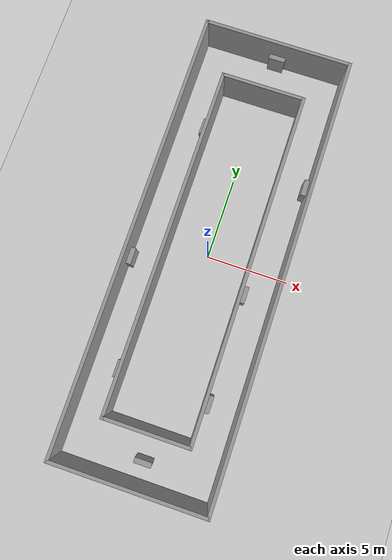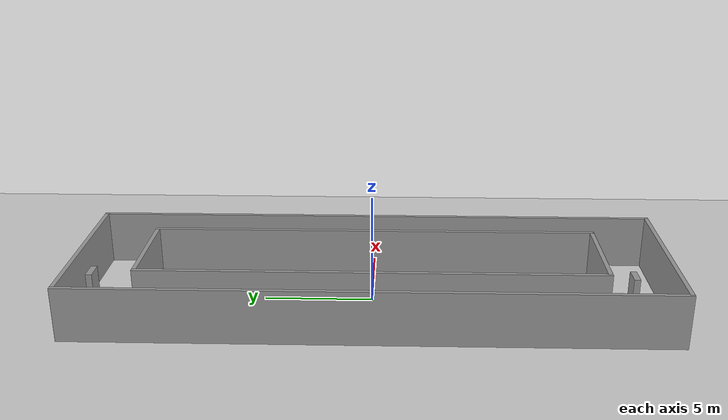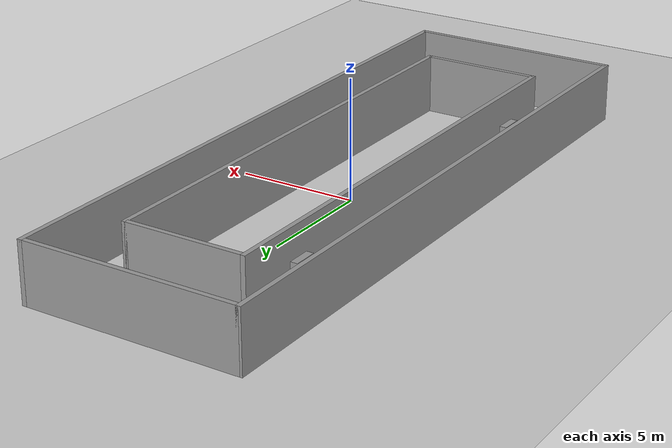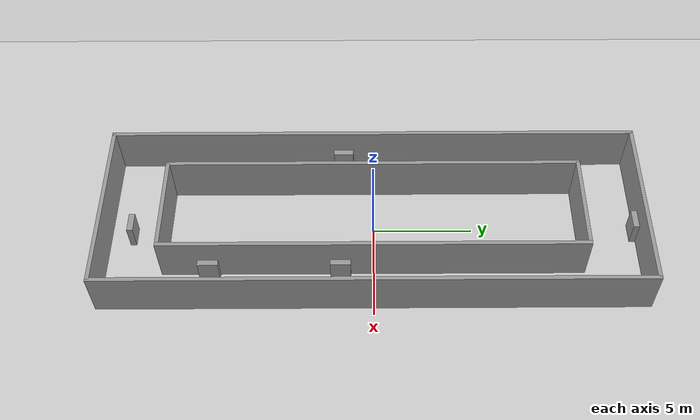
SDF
<?xml version="1.4"?>
<sdf version="1.4">
  <world name="default">
    <include>
      <uri>model://sun</uri>
    </include>
    <include>
      <uri>model://ground_plane</uri>
    </include>
    <gui>
      <camera name="gzclient_camera">
        <pose>0 0 35 0 1.57 3.14</pose>
      </camera>
    </gui>

<!--map-->
    <model name='Track'>
      <static>true</static>
      <link name='Wall_1'>
        <collision name='Wall_1_Collision'>
          <geometry>
            <box>
              <size>27.0 0.2 2.5</size>
            </box>
          </geometry>
          <pose>0 0 1.25 0 -0 0</pose>
        </collision>
        <visual name='Wall_1_Visual'>
          <pose>0 0 1.25 0 -0 0</pose>
          <geometry>
            <box>
              <size>27 0.2 2.5</size>
            </box>
          </geometry>
          <material>
            <script>
              <uri>file://media/materials/scripts/gazebo.material</uri>
              <name>Gazebo/Grey</name>
            </script>
          </material>
        </visual>
        <velocity_decay>
          <linear>0</linear>
          <angular>0</angular>
        </velocity_decay>
        <pose>4.5 0 0 0 0 -1.5708</pose>
      </link>
      <link name='Wall_2'>
        <collision name='Wall_2_Collision'>
          <geometry>
            <box>
              <size>9.0 0.2 2.5</size>
            </box>
          </geometry>
          <pose>0 0 1.25 0 -0 0</pose>
        </collision>
        <visual name='Wall_3_Visual'>
          <pose>0 0 1.25 0 -0 0</pose>
          <geometry>
            <box>
              <size>9.0 0.2 2.5</size>
            </box>
          </geometry>
          <material>
            <script>
              <uri>file://media/materials/scripts/gazebo.material</uri>
              <name>Gazebo/Grey</name>
            </script>
          </material>
        </visual>
        <velocity_decay>
          <linear>0</linear>
          <angular>0</angular>
        </velocity_decay>
        <pose>0.0 -13.4 0 0 -0 0</pose>
      </link>
      <link name='Wall_3'>
        <collision name='Wall_3_Collision'>
          <geometry>
            <box>
              <size>27.0 0.2 2.5</size>
            </box>
          </geometry>
          <pose>0 0 1.25 0 -0 0</pose>
        </collision>
        <visual name='Wall_3_Visual'>
          <pose>0 0 1.25 0 -0 0</pose>
          <geometry>
            <box>
              <size>27.0 0.2 2.5</size>
            </box>
          </geometry>
          <material>
            <script>
              <uri>file://media/materials/scripts/gazebo.material</uri>
              <name>Gazebo/Grey</name>
            </script>
          </material>
        </visual>
        <velocity_decay>
          <linear>0</linear>
          <angular>0</angular>
        </velocity_decay>
        <pose>-4.5 0 0 0 -0 1.5708</pose>
      </link>
      <link name='Wall_4'>
        <collision name='Wall_4_Collision'>
          <geometry>
            <box>
              <size>9.0 0.2 2.5</size>
            </box>
          </geometry>
          <pose>0 0 1.25 0 -0 0</pose>
        </collision>
        <visual name='Wall_4_Visual'>
          <pose>0 0 1.25 0 -0 0</pose>
          <geometry>
            <box>
              <size>9.0 0.2 2.5</size>
            </box>
          </geometry>
          <material>
            <script>
              <uri>file://media/materials/scripts/gazebo.material</uri>
              <name>Gazebo/Grey</name>
            </script>
          </material>
        </visual>
        <velocity_decay>
          <linear>0</linear>
          <angular>0</angular>
        </velocity_decay>
        <pose>0.0 13.4 0 0 -0 0.0</pose>
      </link>
      <link name='Wall_5'>
        <collision name='Wall_5_Collision'>
          <geometry>
            <box>
              <size>21.0 0.2 2.5</size>
            </box>
          </geometry>
          <pose>0 0 1.25 0 -0 0</pose>
        </collision>
        <visual name='Wall_5_Visual'>
          <pose>0 0 1.25 0 -0 0</pose>
          <geometry>
            <box>
              <size>21.0 0.2 2.5</size>
            </box>
          </geometry>
          <material>
            <script>
              <uri>file://media/materials/scripts/gazebo.material</uri>
              <name>Gazebo/Grey</name>
            </script>
          </material>
        </visual>
        <velocity_decay>
          <linear>0</linear>
          <angular>0</angular>
        </velocity_decay>
        <pose>-2.5 0 0 0 -0 1.5708</pose>
      </link>
      <link name='Wall_6'>
        <collision name='Wall_6_Collision'>
          <geometry>
            <box>
              <size>21.0 0.2 2.5</size>
            </box>
          </geometry>
          <pose>0 0 1.25 0 -0 0</pose>
        </collision>
        <visual name='Wall_5_Visual'>
          <pose>0 0 1.25 0 -0 0</pose>
          <geometry>
            <box>
              <size>21.0 0.2 2.5</size>
            </box>
          </geometry>
          <material>
            <script>
              <uri>file://media/materials/scripts/gazebo.material</uri>
              <name>Gazebo/Grey</name>
            </script>
          </material>
        </visual>
        <velocity_decay>
          <linear>0</linear>
          <angular>0</angular>
        </velocity_decay>
        <pose>2.5 0 0 0 -0 1.5708</pose>
      </link>
      <link name='Wall_7'>
        <collision name='Wall_7_Collision'>
          <geometry>
            <box>
              <size>5.0 0.2 2.5</size>
            </box>
          </geometry>
          <pose>0 0 1.25 0 -0 0</pose>
        </collision>
        <visual name='Wall_7_Visual'>
          <pose>0 0 1.25 0 -0 0</pose>
          <geometry>
            <box>
              <size>5.0 0.2 2.5</size>
            </box>
          </geometry>
          <material>
            <script>
              <uri>file://media/materials/scripts/gazebo.material</uri>
              <name>Gazebo/Grey</name>
            </script>
          </material>
        </visual>
        <velocity_decay>
          <linear>0</linear>
          <angular>0</angular>
        </velocity_decay>
        <pose>0.0 10.4 0 0 -0 0.0</pose>
      </link>
      <link name='Wall_8'>
        <collision name='Wall_8_Collision'>
          <geometry>
            <box>
              <size>5.0 0.2 2.5</size>
            </box>
          </geometry>
          <pose>0 0 1.25 0 -0 0</pose>
        </collision>
        <visual name='Wall_8_Visual'>
          <pose>0 0 1.25 0 -0 0</pose>
          <geometry>
            <box>
              <size>5.0 0.2 2.5</size>
            </box>
          </geometry>
          <material>
            <script>
              <uri>file://media/materials/scripts/gazebo.material</uri>
              <name>Gazebo/Grey</name>
            </script>
          </material>
        </visual>
        <velocity_decay>
          <linear>0</linear>
          <angular>0</angular>
        </velocity_decay>
        <pose>0.0 -10.4 0 0 -0 0.0</pose>
      </link>
    </model>

    <model name='unit_box_0'>
      <static>true</static>
      <pose frame=''>-2.75 -7.84313 0 0 -0 0</pose>
      <link name='link'>
        <collision name='collision'>
          <geometry>
            <box>
              <size>0.3 1 2.5</size>
            </box>
          </geometry>
        </collision>
        <visual name='visual'>
          <geometry>
            <box>
              <size>0.3 1 2.5</size>
            </box>
          </geometry>
          <material>
            <script>
              <name>Gazebo/Grey</name>
              <uri>file://media/materials/scripts/gazebo.material</uri>
            </script>
          </material>
        </visual>
      </link>
    </model>
    <model name='unit_box_1'>
      <static>true</static>
      <pose frame=''>-4.25 -1.53254 0 0 -0 0</pose>
      <link name='link'>
        <collision name='collision'>
          <geometry>
            <box>
              <size>0.3 1 2.5</size>
            </box>
          </geometry>
        </collision>
        <visual name='visual'>
          <geometry>
            <box>
              <size>0.3 1 2.5</size>
            </box>
          </geometry>
          <material>
            <script>
              <name>Gazebo/Grey</name>
              <uri>file://media/materials/scripts/gazebo.material</uri>
            </script>
          </material>
        </visual>
      </link>
    </model>
    <model name='unit_box_2'>
      <static>true</static>
      <pose frame=''>-2.75 7.41391 0 0 -0 0</pose>
      <link name='link'>
        <collision name='collision'>
          <geometry>
            <box>
              <size>0.3 1 2.5</size>
            </box>
          </geometry>
        </collision>
        <visual name='visual'>
          <geometry>
            <box>
              <size>0.3 1 2.5</size>
            </box>
          </geometry>
          <material>
            <script>
              <name>Gazebo/Grey</name>
              <uri>file://media/materials/scripts/gazebo.material</uri>
            </script>
          </material>
        </visual>
      </link>
    </model>
    <model name='unit_box_3'>
      <static>true</static>
      <pose frame=''>0.186012 13.15 0 0 -0 0</pose>
      <link name='link'>
        <collision name='collision'>
          <geometry>
            <box>
              <size>1 0.3 2.5</size>
            </box>
          </geometry>
        </collision>
        <visual name='visual'>
          <geometry>
            <box>
              <size>1 0.3 2.5</size>
            </box>
          </geometry>
          <material>
            <script>
              <name>Gazebo/Grey</name>
              <uri>file://media/materials/scripts/gazebo.material</uri>
            </script>
          </material>
        </visual>
      </link>
    </model>
    <model name='unit_box_4'>
      <static>true</static>
      <pose frame=''>0.277082 -12.15 0 0 -0 0</pose>
            <link name='link'>
        <collision name='collision'>
          <geometry>
            <box>
              <size>1 0.3 2.5</size>
            </box>
          </geometry>
        </collision>
        <visual name='visual'>
          <geometry>
            <box>
              <size>1 0.3 2.5</size>
            </box>
          </geometry>
          <material>
            <script>
              <name>Gazebo/Grey</name>
              <uri>file://media/materials/scripts/gazebo.material</uri>
            </script>
          </material>
        </visual>
      </link>
    </model>
    <model name='unit_box_5'>
      <static>true</static>
      <pose frame=''>2.75 -8.08501 0 0 -0 0</pose>
            <link name='link'>
        <collision name='collision'>
          <geometry>
            <box>
              <size>0.3 1 2.5</size>
            </box>
          </geometry>
        </collision>
        <visual name='visual'>
          <geometry>
            <box>
              <size>0.3 1 2.5</size>
            </box>
          </geometry>
          <material>
            <script>
              <name>Gazebo/Grey</name>
              <uri>file://media/materials/scripts/gazebo.material</uri>
            </script>
          </material>
        </visual>
      </link>
    </model>
    <model name='unit_box_6'>
      <static>true</static>
      <pose frame=''>2.75 -1.6215 0 0 -0 0</pose>
            <link name='link'>
        <collision name='collision'>
          <geometry>
            <box>
              <size>0.3 1 2.5</size>
            </box>
          </geometry>
        </collision>
        <visual name='visual'>
          <geometry>
            <box>
              <size>0.3 1 2.5</size>
            </box>
          </geometry>
          <material>
            <script>
              <name>Gazebo/Grey</name>
              <uri>file://media/materials/scripts/gazebo.material</uri>
            </script>
          </material>
        </visual>
      </link>
    </model>
    <model name='unit_box_7'>
      <static>true</static>
      <pose frame=''>4.25 5.64385 0 0 -0 0</pose>
            <link name='link'>
        <collision name='collision'>
          <geometry>
            <box>
              <size>0.3 1 2.5</size>
            </box>
          </geometry>
        </collision>
        <visual name='visual'>
          <geometry>
            <box>
              <size>0.3 1 2.5</size>
            </box>
          </geometry>
          <material>
            <script>
              <name>Gazebo/Grey</name>
              <uri>file://media/materials/scripts/gazebo.material</uri>
            </script>
          </material>
        </visual>
      </link>
    </model>
  </world>
</sdf>
